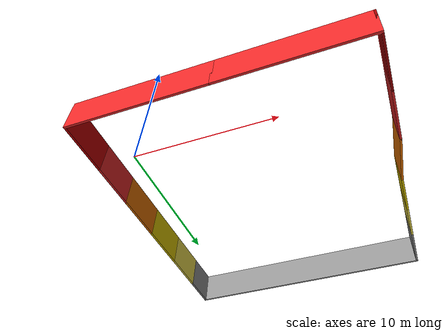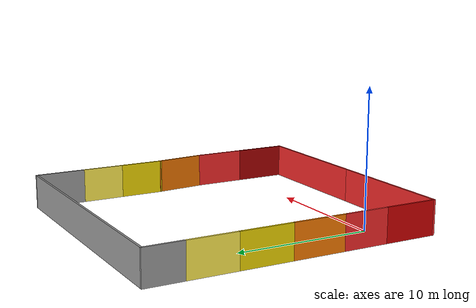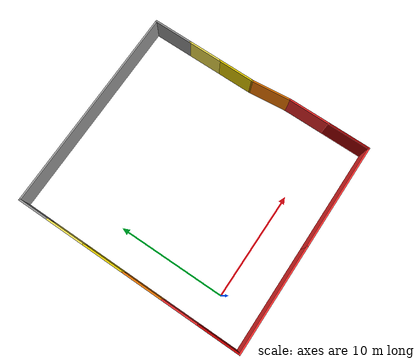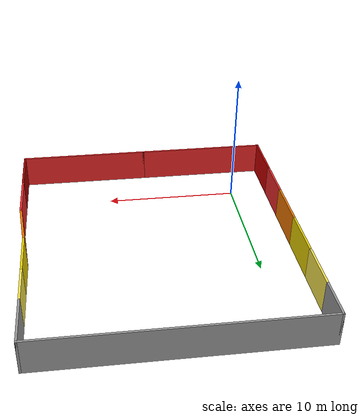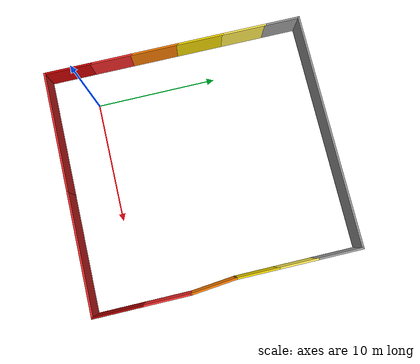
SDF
<?xml version='1.0'?>
<sdf version='1.6'>
  <model name='Gradient'>
    <pose frame=''>6.96345 7.175 0 0 -0 0</pose>
    <link name='Wall_0'>
      <collision name='Wall_0_Collision'>
        <geometry>
          <box>
            <size>10 0.15 2.5</size>
          </box>
        </geometry>
        <pose frame=''>0 0 1.25 0 -0 0</pose>
      </collision>
      <visual name='Wall_0_Visual'>
        <pose frame=''>0 0 1.25 0 -0 0</pose>
        <geometry>
          <box>
            <size>10 0.15 2.5</size>
          </box>
        </geometry>
        <material>
          <script>
            <uri>file://media/materials/scripts/gazebo.material</uri>
            <name>Gazebo/Grey</name>
          </script>
          <ambient>0.937255 0.160784 0.160784 1</ambient>
        </material>
        <meta>
          <layer>0</layer>
        </meta>
      </visual>
      <pose frame=''>-4.92845 -10.675 0 0 -0 0</pose>
    </link>
    <link name='Wall_1'>
      <collision name='Wall_1_Collision'>
        <geometry>
          <box>
            <size>10 0.15 2.5</size>
          </box>
        </geometry>
        <pose frame=''>0 0 1.25 0 -0 0</pose>
      </collision>
      <visual name='Wall_1_Visual'>
        <pose frame=''>0 0 1.25 0 -0 0</pose>
        <geometry>
          <box>
            <size>10 0.15 2.5</size>
          </box>
        </geometry>
        <material>
          <script>
            <uri>file://media/materials/scripts/gazebo.material</uri>
            <name>Gazebo/Grey</name>
          </script>
          <ambient>0.937255 0.160784 0.160784 1</ambient>
        </material>
        <meta>
          <layer>0</layer>
        </meta>
      </visual>
      <pose frame=''>4.92155 -10.675 0 0 -0 0</pose>
    </link>
    <link name='Wall_2'>
      <collision name='Wall_2_Collision'>
        <geometry>
          <box>
            <size>4 0.15 2.5</size>
          </box>
        </geometry>
        <pose frame=''>0 0 1.25 0 -0 0</pose>
      </collision>
      <visual name='Wall_2_Visual'>
        <pose frame=''>0 0 1.25 0 -0 0</pose>
        <geometry>
          <box>
            <size>4 0.15 2.5</size>
          </box>
        </geometry>
        <material>
          <script>
            <uri>file://media/materials/scripts/gazebo.material</uri>
            <name>Gazebo/Grey</name>
          </script>
          <ambient>0.643137 0 0 1</ambient>
        </material>
        <meta>
          <layer>0</layer>
        </meta>
      </visual>
      <pose frame=''>9.84655 -8.75 0 0 -0 1.5708</pose>
    </link>
    <link name='Wall_25'>
      <collision name='Wall_25_Collision'>
        <geometry>
          <box>
            <size>4 0.15 2.5</size>
          </box>
        </geometry>
        <pose frame=''>0 0 1.25 0 -0 0</pose>
      </collision>
      <visual name='Wall_25_Visual'>
        <pose frame=''>0 0 1.25 0 -0 0</pose>
        <geometry>
          <box>
            <size>4 0.15 2.5</size>
          </box>
        </geometry>
        <material>
          <script>
            <uri>file://media/materials/scripts/gazebo.material</uri>
            <name>Gazebo/Grey</name>
          </script>
          <ambient>0.8 0 0 1</ambient>
        </material>
        <meta>
          <layer>0</layer>
        </meta>
      </visual>
      <pose frame=''>-9.85345 -8.75 0 0 -0 1.5708</pose>
    </link>
    <link name='Wall_26'>
      <collision name='Wall_26_Collision'>
        <geometry>
          <box>
            <size>3.5 0.15 2.5</size>
          </box>
        </geometry>
        <pose frame=''>0 0 1.25 0 -0 0</pose>
      </collision>
      <visual name='Wall_26_Visual'>
        <pose frame=''>0 0 1.25 0 -0 0</pose>
        <geometry>
          <box>
            <size>3.5 0.15 2.5</size>
          </box>
        </geometry>
        <material>
          <script>
            <uri>file://media/materials/scripts/gazebo.material</uri>
            <name>Gazebo/Grey</name>
          </script>
          <ambient>0.937255 0.160784 0.160784 1</ambient>
        </material>
        <meta>
          <layer>0</layer>
        </meta>
      </visual>
      <pose frame=''>-9.85345 -5.15 0 0 -0 1.5708</pose>
    </link>
    <link name='Wall_27'>
      <collision name='Wall_27_Collision'>
        <geometry>
          <box>
            <size>4 0.15 2.5</size>
          </box>
        </geometry>
        <pose frame=''>0 0 1.25 0 -0 0</pose>
      </collision>
      <visual name='Wall_27_Visual'>
        <pose frame=''>0 0 1.25 0 -0 0</pose>
        <geometry>
          <box>
            <size>4 0.15 2.5</size>
          </box>
        </geometry>
        <material>
          <script>
            <uri>file://media/materials/scripts/gazebo.material</uri>
            <name>Gazebo/Grey</name>
          </script>
          <ambient>0.960784 0.47451 0 1</ambient>
        </material>
        <meta>
          <layer>0</layer>
        </meta>
      </visual>
      <pose frame=''>-9.85345 -1.55 0 0 -0 1.5708</pose>
    </link>
    <link name='Wall_28'>
      <collision name='Wall_28_Collision'>
        <geometry>
          <box>
            <size>4 0.15 2.5</size>
          </box>
        </geometry>
        <pose frame=''>0 0 1.25 0 -0 0</pose>
      </collision>
      <visual name='Wall_28_Visual'>
        <pose frame=''>0 0 1.25 0 -0 0</pose>
        <geometry>
          <box>
            <size>4 0.15 2.5</size>
          </box>
        </geometry>
        <material>
          <script>
            <uri>file://media/materials/scripts/gazebo.material</uri>
            <name>Gazebo/Grey</name>
          </script>
          <ambient>0.929412 0.831373 0 1</ambient>
        </material>
        <meta>
          <layer>0</layer>
        </meta>
      </visual>
      <pose frame=''>-9.85345 2.3 0 0 -0 1.5708</pose>
    </link>
    <link name='Wall_29'>
      <collision name='Wall_29_Collision'>
        <geometry>
          <box>
            <size>3.75 0.15 2.5</size>
          </box>
        </geometry>
        <pose frame=''>0 0 1.25 0 -0 0</pose>
      </collision>
      <visual name='Wall_29_Visual'>
        <pose frame=''>0 0 1.25 0 -0 0</pose>
        <geometry>
          <box>
            <size>3.75 0.15 2.5</size>
          </box>
        </geometry>
        <material>
          <script>
            <uri>file://media/materials/scripts/gazebo.material</uri>
            <name>Gazebo/Grey</name>
          </script>
          <ambient>0.988235 0.913725 0.309804 1</ambient>
        </material>
        <meta>
          <layer>0</layer>
        </meta>
      </visual>
      <pose frame=''>-9.85345 6.025 0 0 -0 1.5708</pose>
    </link>
    <link name='Wall_3'>
      <collision name='Wall_3_Collision'>
        <geometry>
          <box>
            <size>4 0.15 2.5</size>
          </box>
        </geometry>
        <pose frame=''>0 0 1.25 0 -0 0</pose>
      </collision>
      <visual name='Wall_3_Visual'>
        <pose frame=''>0 0 1.25 0 -0 0</pose>
        <geometry>
          <box>
            <size>4 0.15 2.5</size>
          </box>
        </geometry>
        <material>
          <script>
            <uri>file://media/materials/scripts/gazebo.material</uri>
            <name>Gazebo/Grey</name>
          </script>
          <ambient>0.937255 0.160784 0.160784 1</ambient>
        </material>
        <meta>
          <layer>0</layer>
        </meta>
      </visual>
      <pose frame=''>9.84655 -4.9 0 0 -0 1.5708</pose>
    </link>
    <link name='Wall_30'>
      <collision name='Wall_30_Collision'>
        <geometry>
          <box>
            <size>3 0.15 2.5</size>
          </box>
        </geometry>
        <pose frame=''>0 0 1.25 0 -0 0</pose>
      </collision>
      <visual name='Wall_30_Visual'>
        <pose frame=''>0 0 1.25 0 -0 0</pose>
        <geometry>
          <box>
            <size>3 0.15 2.5</size>
          </box>
        </geometry>
        <material>
          <script>
            <uri>file://media/materials/scripts/gazebo.material</uri>
            <name>Gazebo/Grey</name>
          </script>
          <ambient>1 1 1 1</ambient>
        </material>
        <meta>
          <layer>0</layer>
        </meta>
      </visual>
      <pose frame=''>-9.85345 9.25 0 0 -0 1.5708</pose>
    </link>
    <link name='Wall_31'>
      <collision name='Wall_31_Collision'>
        <geometry>
          <box>
            <size>19.5 0.15 2.5</size>
          </box>
        </geometry>
        <pose frame=''>0 0 1.25 0 -0 0</pose>
      </collision>
      <visual name='Wall_31_Visual'>
        <pose frame=''>0 0 1.25 0 -0 0</pose>
        <geometry>
          <box>
            <size>19.5 0.15 2.5</size>
          </box>
        </geometry>
        <material>
          <script>
            <uri>file://media/materials/scripts/gazebo.material</uri>
            <name>Gazebo/Grey</name>
          </script>
          <ambient>1 1 1 1</ambient>
        </material>
        <meta>
          <layer>0</layer>
        </meta>
      </visual>
      <pose frame=''>-0.178452 10.675 0 0 -0 0</pose>
    </link>
    <link name='Wall_32'>
      <collision name='Wall_32_Collision'>
        <geometry>
          <box>
            <size>3.75 0.15 2.5</size>
          </box>
        </geometry>
        <pose frame=''>0 0 1.25 0 -0 0</pose>
      </collision>
      <visual name='Wall_32_Visual'>
        <pose frame=''>0 0 1.25 0 -0 0</pose>
        <geometry>
          <box>
            <size>3.75 0.15 2.5</size>
          </box>
        </geometry>
        <material>
          <script>
            <uri>file://media/materials/scripts/gazebo.material</uri>
            <name>Gazebo/Grey</name>
          </script>
          <ambient>1 1 1 1</ambient>
        </material>
        <meta>
          <layer>0</layer>
        </meta>
      </visual>
      <pose frame=''>9.49655 8.875 0 0 -0 -1.5708</pose>
    </link>
    <link name='Wall_33'>
      <collision name='Wall_33_Collision'>
        <geometry>
          <box>
            <size>3.25 0.15 2.5</size>
          </box>
        </geometry>
        <pose frame=''>0 0 1.25 0 -0 0</pose>
      </collision>
      <visual name='Wall_33_Visual'>
        <pose frame=''>0 0 1.25 0 -0 0</pose>
        <geometry>
          <box>
            <size>3.25 0.15 2.5</size>
          </box>
        </geometry>
        <material>
          <script>
            <uri>file://media/materials/scripts/gazebo.material</uri>
            <name>Gazebo/Grey</name>
          </script>
          <ambient>0.988235 0.913725 0.309804 1</ambient>
        </material>
        <meta>
          <layer>0</layer>
        </meta>
      </visual>
      <pose frame=''>9.49655 5.525 0 0 -0 -1.5708</pose>
    </link>
    <link name='Wall_34'>
      <collision name='Wall_34_Collision'>
        <geometry>
          <box>
            <size>3.5 0.15 2.5</size>
          </box>
        </geometry>
        <pose frame=''>0 0 1.25 0 -0 0</pose>
      </collision>
      <visual name='Wall_34_Visual'>
        <pose frame=''>0 0 1.25 0 -0 0</pose>
        <geometry>
          <box>
            <size>3.5 0.15 2.5</size>
          </box>
        </geometry>
        <material>
          <script>
            <uri>file://media/materials/scripts/gazebo.material</uri>
            <name>Gazebo/Grey</name>
          </script>
          <ambient>0.929412 0.831373 0 1</ambient>
        </material>
        <meta>
          <layer>0</layer>
        </meta>
      </visual>
      <pose frame=''>9.49655 2.3 0 0 -0 -1.5708</pose>
    </link>
    <link name='Wall_36'>
      <collision name='Wall_36_Collision'>
        <geometry>
          <box>
            <size>3.76697 0.15 2.5</size>
          </box>
        </geometry>
        <pose frame=''>0 0 1.25 0 -0 0</pose>
      </collision>
      <visual name='Wall_36_Visual'>
        <pose frame=''>0 0 1.25 0 -0 0</pose>
        <geometry>
          <box>
            <size>3.76697 0.15 2.5</size>
          </box>
        </geometry>
        <material>
          <script>
            <uri>file://media/materials/scripts/gazebo.material</uri>
            <name>Gazebo/Grey</name>
          </script>
          <ambient>0.960784 0.47451 0 1</ambient>
        </material>
        <meta>
          <layer>0</layer>
        </meta>
      </visual>
      <pose frame=''>9.67155 -1.175 0 0 -0 -1.47388</pose>
    </link>
    <static>1</static>
  </model>
</sdf>
